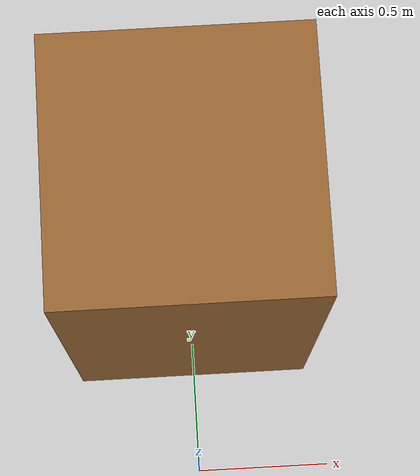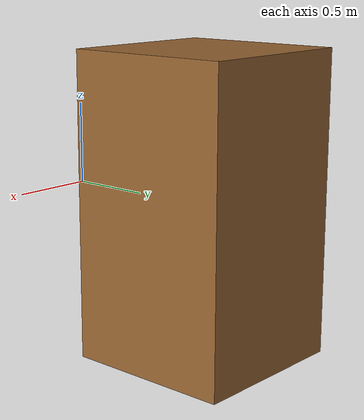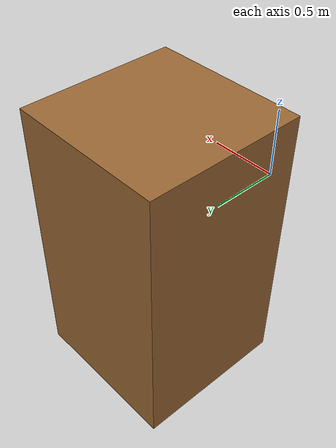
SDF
<?xml version="1.0"?>
<sdf version="1.6">
  <model name="table_model">
    <!-- A table shouldn't move, so make the entire model static -->
    <static>true</static>

    <!-- Single link for the table -->
    <link name="table_link">
      <pose>0 1.0 0 0 0 0</pose>
      <!-- x=0, y=1.0 => place it behind or beside the belt, tweak as needed
           z=0 => the bottom of the table sits on the ground -->

      <collision name="table_collision">
        <geometry>
          <box>
            <size>1 1 1.8 </size>
            <!-- 1x1 meter top, 0.85 m tall -->
          </box>
        </geometry>
      </collision>

      <visual name="table_visual">
        <geometry>
          <box>
            <size>1 1 1.8 </size>
          </box>
        </geometry>
        <material>
          <ambient>0.3 0.2 0.1 1</ambient>
          <diffuse>0.6 0.4 0.2 1</diffuse>
        </material>
      </visual>
    </link>
  </model>
</sdf>
